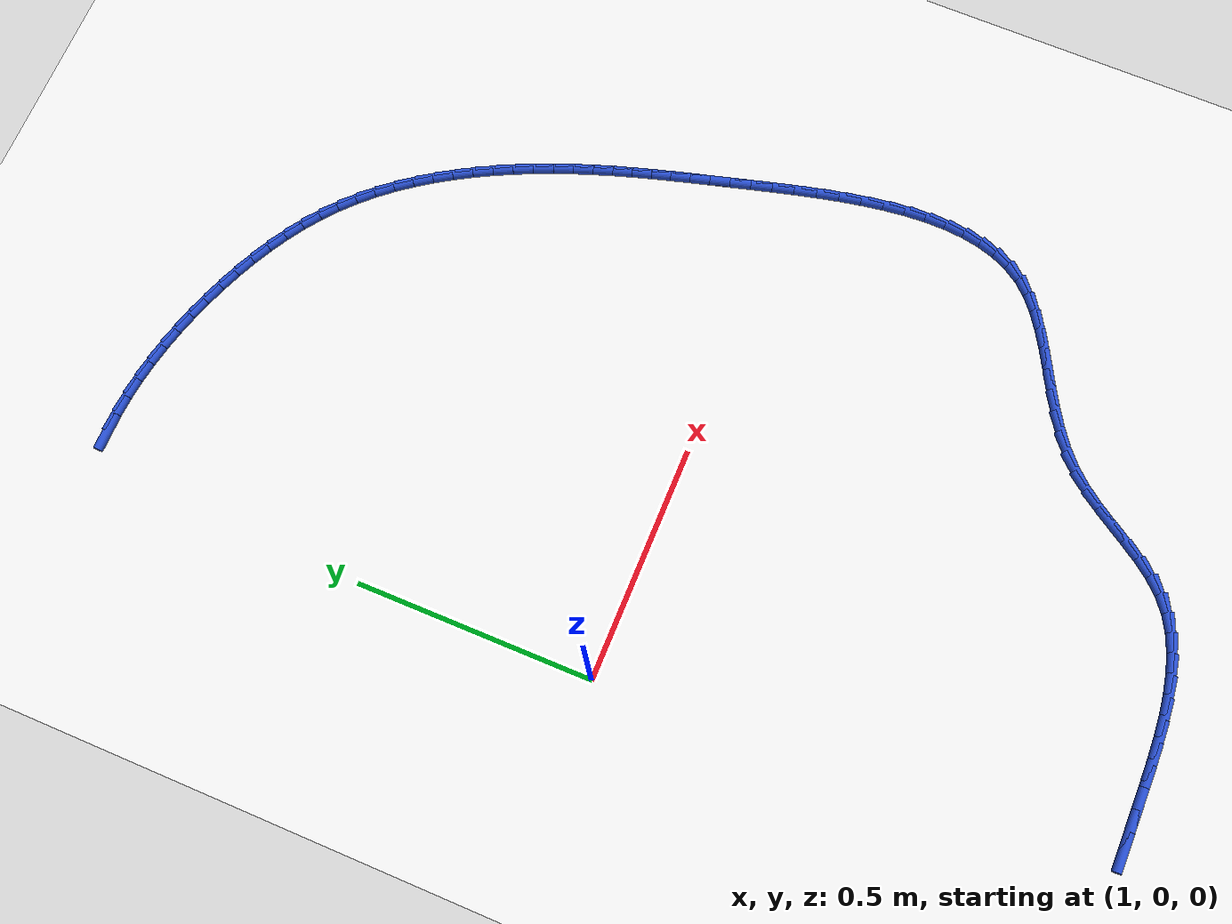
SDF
<sdf version="1.6">
 <world name="default">
  <model name="ground_plane">
   <static>1</static>
   <link name="link">
    <collision name="collision">
     <geometry><plane><normal>0 0 1</normal><size>100 100</size></plane></geometry>
     <surface><friction><ode><mu>100</mu><mu2>50</mu2></ode></friction></surface>
    </collision>
    <visual name="visual">
     <cast_shadows>0</cast_shadows>
     <geometry><plane><normal>0 0 1</normal><size>100 100</size></plane></geometry>
     <material>
      <script><uri>file://media/materials/scripts/gazebo.material</uri><name>Gazebo/WhiteGlow</name></script>
     </material>
    </visual>
   </link>
  </model>
  <model name="line">
   <link name="link_40">
    <pose>1.0859041512149763 1.0980707895062725 0.01 0 1.57 0.0020248489382844845</pose>
    <collision name="collision">
     <geometry><cylinder><radius>0.01</radius><length>0.08</length></cylinder></geometry>
    </collision>
    <visual name="visual">
     <material>
      <script><name>Gazebo/Blue</name><uri>file://media/materials/scripts/gazebo.material</uri></script>
     </material>
     <geometry><cylinder><radius>0.01</radius><length>0.08</length></cylinder></geometry>
    </visual>
   </link>
   <link name="link_41">
    <pose>1.1276568805194542 1.0981553325914177 0.01 0 1.57 -0.053488393881848506</pose>
    <collision name="collision">
     <geometry><cylinder><radius>0.01</radius><length>0.08</length></cylinder></geometry>
    </collision>
    <visual name="visual">
     <material>
      <script><name>Gazebo/Blue</name><uri>file://media/materials/scripts/gazebo.material</uri></script>
     </material>
     <geometry><cylinder><radius>0.01</radius><length>0.08</length></cylinder></geometry>
    </visual>
   </link>
   <link name="link_42">
    <pose>1.1695359308908102 1.09591315074152 0.01 0 1.57 -0.1053639454663621</pose>
    <collision name="collision">
     <geometry><cylinder><radius>0.01</radius><length>0.08</length></cylinder></geometry>
    </collision>
    <visual name="visual">
     <material>
      <script><name>Gazebo/Blue</name><uri>file://media/materials/scripts/gazebo.material</uri></script>
     </material>
     <geometry><cylinder><radius>0.01</radius><length>0.08</length></cylinder></geometry>
    </visual>
   </link>
   <link name="link_43">
    <pose>1.2114445009837551 1.0914810853483048 0.01 0 1.57 -0.15376948117144418</pose>
    <collision name="collision">
     <geometry><cylinder><radius>0.01</radius><length>0.08</length></cylinder></geometry>
    </collision>
    <visual name="visual">
     <material>
      <script><name>Gazebo/Blue</name><uri>file://media/materials/scripts/gazebo.material</uri></script>
     </material>
     <geometry><cylinder><radius>0.01</radius><length>0.08</length></cylinder></geometry>
    </visual>
   </link>
   <link name="link_44">
    <pose>1.2532857894529976 1.084995977803495 0.01 0 1.57 -0.19891472501962215</pose>
    <collision name="collision">
     <geometry><cylinder><radius>0.01</radius><length>0.08</length></cylinder></geometry>
    </collision>
    <visual name="visual">
     <material>
      <script><name>Gazebo/Blue</name><uri>file://media/materials/scripts/gazebo.material</uri></script>
     </material>
     <geometry><cylinder><radius>0.01</radius><length>0.08</length></cylinder></geometry>
    </visual>
   </link>
   <link name="link_45">
    <pose>1.2949629949532466 1.0765946694988149 0.01 0 1.57 -0.24103403496015072</pose>
    <collision name="collision">
     <geometry><cylinder><radius>0.01</radius><length>0.08</length></cylinder></geometry>
    </collision>
    <visual name="visual">
     <material>
      <script><name>Gazebo/Blue</name><uri>file://media/materials/scripts/gazebo.material</uri></script>
     </material>
     <geometry><cylinder><radius>0.01</radius><length>0.08</length></cylinder></geometry>
    </visual>
   </link>
   <link name="link_46">
    <pose>1.336379316139213 1.0664140018259893 0.01 0 1.57 -0.28037332376972135</pose>
    <collision name="collision">
     <geometry><cylinder><radius>0.01</radius><length>0.08</length></cylinder></geometry>
    </collision>
    <visual name="visual">
     <material>
      <script><name>Gazebo/Blue</name><uri>file://media/materials/scripts/gazebo.material</uri></script>
     </material>
     <geometry><cylinder><radius>0.01</radius><length>0.08</length></cylinder></geometry>
    </visual>
   </link>
   <link name="link_47">
    <pose>1.377437951665604 1.0545908161767419 0.01 0 1.57 -0.3171808374756045</pose>
    <collision name="collision">
     <geometry><cylinder><radius>0.01</radius><length>0.08</length></cylinder></geometry>
    </collision>
    <visual name="visual">
     <material>
      <script><name>Gazebo/Blue</name><uri>file://media/materials/scripts/gazebo.material</uri></script>
     </material>
     <geometry><cylinder><radius>0.01</radius><length>0.08</length></cylinder></geometry>
    </visual>
   </link>
   <link name="link_48">
    <pose>1.4180421001871304 1.0412619539427965 0.01 0 1.57 -0.35192389397606794</pose>
    <collision name="collision">
     <geometry><cylinder><radius>0.01</radius><length>0.08</length></cylinder></geometry>
    </collision>
    <visual name="visual">
     <material>
      <script><name>Gazebo/Blue</name><uri>file://media/materials/scripts/gazebo.material</uri></script>
     </material>
     <geometry><cylinder><radius>0.01</radius><length>0.08</length></cylinder></geometry>
    </visual>
   </link>
   <link name="link_49">
    <pose>1.4580929541964442 1.0265548688478368 0.01 0 1.57 -0.3878942419663834</pose>
    <collision name="collision">
     <geometry><cylinder><radius>0.01</radius><length>0.08</length></cylinder></geometry>
    </collision>
    <visual name="visual">
     <material>
      <script><name>Gazebo/Blue</name><uri>file://media/materials/scripts/gazebo.material</uri></script>
     </material>
     <geometry><cylinder><radius>0.01</radius><length>0.08</length></cylinder></geometry>
    </visual>
   </link>
   <link name="link_50">
    <pose>1.4974641320047304 1.0104679835329133 0.01 0 1.57 -0.42752070435544054</pose>
    <collision name="collision">
     <geometry><cylinder><radius>0.01</radius><length>0.08</length></cylinder></geometry>
    </collision>
    <visual name="visual">
     <material>
      <script><name>Gazebo/Blue</name><uri>file://media/materials/scripts/gazebo.material</uri></script>
     </material>
     <geometry><cylinder><radius>0.01</radius><length>0.08</length></cylinder></geometry>
    </visual>
   </link>
   <link name="link_51">
    <pose>1.5360092096523785 0.9929059345043197 0.01 0 1.57 -0.4710433658986751</pose>
    <collision name="collision">
     <geometry><cylinder><radius>0.01</radius><length>0.08</length></cylinder></geometry>
    </collision>
    <visual name="visual">
     <material>
      <script><name>Gazebo/Blue</name><uri>file://media/materials/scripts/gazebo.material</uri></script>
     </material>
     <geometry><cylinder><radius>0.01</radius><length>0.08</length></cylinder></geometry>
    </visual>
   </link>
   <link name="link_52">
    <pose>1.5735813116286221 0.9737712452723644 0.01 0 1.57 -0.5186278829530047</pose>
    <collision name="collision">
     <geometry><cylinder><radius>0.01</radius><length>0.08</length></cylinder></geometry>
    </collision>
    <visual name="visual">
     <material>
      <script><name>Gazebo/Blue</name><uri>file://media/materials/scripts/gazebo.material</uri></script>
     </material>
     <geometry><cylinder><radius>0.01</radius><length>0.08</length></cylinder></geometry>
    </visual>
   </link>
   <link name="link_53">
    <pose>1.610033562422693 0.9529664393473535 0.01 0 1.57 -0.5703944252641756</pose>
    <collision name="collision">
     <geometry><cylinder><radius>0.01</radius><length>0.08</length></cylinder></geometry>
    </collision>
    <visual name="visual">
     <material>
      <script><name>Gazebo/Blue</name><uri>file://media/materials/scripts/gazebo.material</uri></script>
     </material>
     <geometry><cylinder><radius>0.01</radius><length>0.08</length></cylinder></geometry>
    </visual>
   </link>
   <link name="link_54">
    <pose>1.645219086523824 0.9303940402395947 0.01 0 1.57 -0.6263919868194499</pose>
    <collision name="collision">
     <geometry><cylinder><radius>0.01</radius><length>0.08</length></cylinder></geometry>
    </collision>
    <visual name="visual">
     <material>
      <script><name>Gazebo/Blue</name><uri>file://media/materials/scripts/gazebo.material</uri></script>
     </material>
     <geometry><cylinder><radius>0.01</radius><length>0.08</length></cylinder></geometry>
    </visual>
   </link>
   <link name="link_55">
    <pose>1.6789910084212474 0.9059565714593957 0.01 0 1.57 -0.6865693831486038</pose>
    <collision name="collision">
     <geometry><cylinder><radius>0.01</radius><length>0.08</length></cylinder></geometry>
    </collision>
    <visual name="visual">
     <material>
      <script><name>Gazebo/Blue</name><uri>file://media/materials/scripts/gazebo.material</uri></script>
     </material>
     <geometry><cylinder><radius>0.01</radius><length>0.08</length></cylinder></geometry>
    </visual>
   </link>
   <link name="link_56">
    <pose>1.711202453608887 0.8795565579104396 0.01 0 1.57 -0.7492569197214123</pose>
    <collision name="collision">
     <geometry><cylinder><radius>0.01</radius><length>0.08</length></cylinder></geometry>
    </collision>
    <visual name="visual">
     <material>
      <script><name>Gazebo/Blue</name><uri>file://media/materials/scripts/gazebo.material</uri></script>
     </material>
     <geometry><cylinder><radius>0.01</radius><length>0.08</length></cylinder></geometry>
    </visual>
   </link>
   <link name="link_57">
    <pose>1.7417431614210928 0.8511473031676515 0.01 0 1.57 -0.8088338215925488</pose>
    <collision name="collision">
     <geometry><cylinder><radius>0.01</radius><length>0.08</length></cylinder></geometry>
    </collision>
    <visual name="visual">
     <material>
      <script><name>Gazebo/Blue</name><uri>file://media/materials/scripts/gazebo.material</uri></script>
     </material>
     <geometry><cylinder><radius>0.01</radius><length>0.08</length></cylinder></geometry>
    </visual>
   </link>
   <link name="link_58">
    <pose>1.7706362943166303 0.8208671514597528 0.01 0 1.57 -0.8640526660216821</pose>
    <collision name="collision">
     <geometry><cylinder><radius>0.01</radius><length>0.08</length></cylinder></geometry>
    </collision>
    <visual name="visual">
     <material>
      <script><name>Gazebo/Blue</name><uri>file://media/materials/scripts/gazebo.material</uri></script>
     </material>
     <geometry><cylinder><radius>0.01</radius><length>0.08</length></cylinder></geometry>
    </visual>
   </link>
   <link name="link_59">
    <pose>1.7979353977059616 0.7888965842482031 0.01 0 1.57 -0.915018374360747</pose>
    <collision name="collision">
     <geometry><cylinder><radius>0.01</radius><length>0.08</length></cylinder></geometry>
    </collision>
    <visual name="visual">
     <material>
      <script><name>Gazebo/Blue</name><uri>file://media/materials/scripts/gazebo.material</uri></script>
     </material>
     <geometry><cylinder><radius>0.01</radius><length>0.08</length></cylinder></geometry>
    </visual>
   </link>
   <link name="link_60">
    <pose>1.8236940169995473 0.7554160829944615 0.01 0 1.57 -0.9619098745434498</pose>
    <collision name="collision">
     <geometry><cylinder><radius>0.01</radius><length>0.08</length></cylinder></geometry>
    </collision>
    <visual name="visual">
     <material>
      <script><name>Gazebo/Blue</name><uri>file://media/materials/scripts/gazebo.material</uri></script>
     </material>
     <geometry><cylinder><radius>0.01</radius><length>0.08</length></cylinder></geometry>
    </visual>
   </link>
   <link name="link_61">
    <pose>1.8479656976078502 0.7206061291599871 0.01 0 1.57 -1.0049516961673555</pose>
    <collision name="collision">
     <geometry><cylinder><radius>0.01</radius><length>0.08</length></cylinder></geometry>
    </collision>
    <visual name="visual">
     <material>
      <script><name>Gazebo/Blue</name><uri>file://media/materials/scripts/gazebo.material</uri></script>
     </material>
     <geometry><cylinder><radius>0.01</radius><length>0.08</length></cylinder></geometry>
    </visual>
   </link>
   <link name="link_62">
    <pose>1.8708039849413316 0.6846472042062395 0.01 0 1.57 -1.0443914623911994</pose>
    <collision name="collision">
     <geometry><cylinder><radius>0.01</radius><length>0.08</length></cylinder></geometry>
    </collision>
    <visual name="visual">
     <material>
      <script><name>Gazebo/Blue</name><uri>file://media/materials/scripts/gazebo.material</uri></script>
     </material>
     <geometry><cylinder><radius>0.01</radius><length>0.08</length></cylinder></geometry>
    </visual>
   </link>
   <link name="link_63">
    <pose>1.8922624244104518 0.6477197895946778 0.01 0 1.57 -1.0804830885034025</pose>
    <collision name="collision">
     <geometry><cylinder><radius>0.01</radius><length>0.08</length></cylinder></geometry>
    </collision>
    <visual name="visual">
     <material>
      <script><name>Gazebo/Blue</name><uri>file://media/materials/scripts/gazebo.material</uri></script>
     </material>
     <geometry><cylinder><radius>0.01</radius><length>0.08</length></cylinder></geometry>
    </visual>
   </link>
   <link name="link_64">
    <pose>1.9123945614256739 0.6100043667867615 0.01 0 1.57 -1.1134748763608069</pose>
    <collision name="collision">
     <geometry><cylinder><radius>0.01</radius><length>0.08</length></cylinder></geometry>
    </collision>
    <visual name="visual">
     <material>
      <script><name>Gazebo/Blue</name><uri>file://media/materials/scripts/gazebo.material</uri></script>
     </material>
     <geometry><cylinder><radius>0.01</radius><length>0.08</length></cylinder></geometry>
    </visual>
   </link>
   <link name="link_65">
    <pose>1.931253941397458 0.5716814172439498 0.01 0 1.57 -1.1436014759672746</pose>
    <collision name="collision">
     <geometry><cylinder><radius>0.01</radius><length>0.08</length></cylinder></geometry>
    </collision>
    <visual name="visual">
     <material>
      <script><name>Gazebo/Blue</name><uri>file://media/materials/scripts/gazebo.material</uri></script>
     </material>
     <geometry><cylinder><radius>0.01</radius><length>0.08</length></cylinder></geometry>
    </visual>
   </link>
   <link name="link_66">
    <pose>1.948894109736267 0.5329314224277014 0.01 0 1.57 -1.1710787005650325</pose>
    <collision name="collision">
     <geometry><cylinder><radius>0.01</radius><length>0.08</length></cylinder></geometry>
    </collision>
    <visual name="visual">
     <material>
      <script><name>Gazebo/Blue</name><uri>file://media/materials/scripts/gazebo.material</uri></script>
     </material>
     <geometry><cylinder><radius>0.01</radius><length>0.08</length></cylinder></geometry>
    </visual>
   </link>
   <link name="link_67">
    <pose>1.9653686118525615 0.4939348637994765 0.01 0 1.57 -1.196100303893416</pose>
    <collision name="collision">
     <geometry><cylinder><radius>0.01</radius><length>0.08</length></cylinder></geometry>
    </collision>
    <visual name="visual">
     <material>
      <script><name>Gazebo/Blue</name><uri>file://media/materials/scripts/gazebo.material</uri></script>
     </material>
     <geometry><cylinder><radius>0.01</radius><length>0.08</length></cylinder></geometry>
    </visual>
   </link>
   <link name="link_68">
    <pose>1.9807309931568036 0.4548722228207336 0.01 0 1.57 -1.2188362346635866</pose>
    <collision name="collision">
     <geometry><cylinder><radius>0.01</radius><length>0.08</length></cylinder></geometry>
    </collision>
    <visual name="visual">
     <material>
      <script><name>Gazebo/Blue</name><uri>file://media/materials/scripts/gazebo.material</uri></script>
     </material>
     <geometry><cylinder><radius>0.01</radius><length>0.08</length></cylinder></geometry>
    </visual>
   </link>
   <link name="link_69">
    <pose>1.995035281477548 0.41592263651237743 0.01 0 1.57 -1.2393833951507676</pose>
    <collision name="collision">
     <geometry><cylinder><radius>0.01</radius><length>0.08</length></cylinder></geometry>
    </collision>
    <visual name="visual">
     <material>
      <script><name>Gazebo/Blue</name><uri>file://media/materials/scripts/gazebo.material</uri></script>
     </material>
     <geometry><cylinder><radius>0.01</radius><length>0.08</length></cylinder></geometry>
    </visual>
   </link>
   <link name="link_70">
    <pose>2.008383133429788 0.377132506260083 0.01 0 1.57 -1.257463731391676</pose>
    <collision name="collision">
     <geometry><cylinder><radius>0.01</radius><length>0.08</length></cylinder></geometry>
    </collision>
    <visual name="visual">
     <material>
      <script><name>Gazebo/Blue</name><uri>file://media/materials/scripts/gazebo.material</uri></script>
     </material>
     <geometry><cylinder><radius>0.01</radius><length>0.08</length></cylinder></geometry>
    </visual>
   </link>
   <link name="link_71">
    <pose>2.0209634281023785 0.33830515502280295 0.01 0 1.57 -1.2726690647923231</pose>
    <collision name="collision">
     <geometry><cylinder><radius>0.01</radius><length>0.08</length></cylinder></geometry>
    </collision>
    <visual name="visual">
     <material>
      <script><name>Gazebo/Blue</name><uri>file://media/materials/scripts/gazebo.material</uri></script>
     </material>
     <geometry><cylinder><radius>0.01</radius><length>0.08</length></cylinder></geometry>
    </visual>
   </link>
   <link name="link_72">
    <pose>2.0329743663474846 0.29921792713884837 0.01 0 1.57 -1.2847072533969426</pose>
    <collision name="collision">
     <geometry><cylinder><radius>0.01</radius><length>0.08</length></cylinder></geometry>
    </collision>
    <visual name="visual">
     <material>
      <script><name>Gazebo/Blue</name><uri>file://media/materials/scripts/gazebo.material</uri></script>
     </material>
     <geometry><cylinder><radius>0.01</radius><length>0.08</length></cylinder></geometry>
    </visual>
   </link>
   <link name="link_73">
    <pose>2.0446141490172707 0.25964816694652904 0.01 0 1.57 -1.293422017777791</pose>
    <collision name="collision">
     <geometry><cylinder><radius>0.01</radius><length>0.08</length></cylinder></geometry>
    </collision>
    <visual name="visual">
     <material>
      <script><name>Gazebo/Blue</name><uri>file://media/materials/scripts/gazebo.material</uri></script>
     </material>
     <geometry><cylinder><radius>0.01</radius><length>0.08</length></cylinder></geometry>
    </visual>
   </link>
   <link name="link_74">
    <pose>2.0560809769639032 0.21937321878415655 0.01 0 1.57 -1.2987940855581936</pose>
    <collision name="collision">
     <geometry><cylinder><radius>0.01</radius><length>0.08</length></cylinder></geometry>
    </collision>
    <visual name="visual">
     <material>
      <script><name>Gazebo/Blue</name><uri>file://media/materials/scripts/gazebo.material</uri></script>
     </material>
     <geometry><cylinder><radius>0.01</radius><length>0.08</length></cylinder></geometry>
    </visual>
   </link>
   <link name="link_75">
    <pose>2.0675730510395476 0.17817042699004093 0.01 0 1.57 -1.3009300420021246</pose>
    <collision name="collision">
     <geometry><cylinder><radius>0.01</radius><length>0.08</length></cylinder></geometry>
    </collision>
    <visual name="visual">
     <material>
      <script><name>Gazebo/Blue</name><uri>file://media/materials/scripts/gazebo.material</uri></script>
     </material>
     <geometry><cylinder><radius>0.01</radius><length>0.08</length></cylinder></geometry>
    </visual>
   </link>
   <link name="link_76">
    <pose>2.0792885720963685 0.1358171359024924 0.01 0 1.57 -1.3008429352503927</pose>
    <collision name="collision">
     <geometry><cylinder><radius>0.01</radius><length>0.08</length></cylinder></geometry>
    </collision>
    <visual name="visual">
     <material>
      <script><name>Gazebo/Blue</name><uri>file://media/materials/scripts/gazebo.material</uri></script>
     </material>
     <geometry><cylinder><radius>0.01</radius><length>0.08</length></cylinder></geometry>
    </visual>
   </link>
   <link name="link_77">
    <pose>2.0913747337799835 0.09213873298599287 0.01 0 1.57 -1.3043114695737508</pose>
    <collision name="collision">
     <geometry><cylinder><radius>0.01</radius><length>0.08</length></cylinder></geometry>
    </collision>
    <visual name="visual">
     <material>
      <script><name>Gazebo/Blue</name><uri>file://media/materials/scripts/gazebo.material</uri></script>
     </material>
     <geometry><cylinder><radius>0.01</radius><length>0.08</length></cylinder></geometry>
    </visual>
   </link>
   <link name="link_78">
    <pose>2.1036134141957223 0.04730469238965821 0.01 0 1.57 -1.3135682985857677</pose>
    <collision name="collision">
     <geometry><cylinder><radius>0.01</radius><length>0.08</length></cylinder></geometry>
    </collision>
    <visual name="visual">
     <material>
      <script><name>Gazebo/Blue</name><uri>file://media/materials/scripts/gazebo.material</uri></script>
     </material>
     <geometry><cylinder><radius>0.01</radius><length>0.08</length></cylinder></geometry>
    </visual>
   </link>
   <link name="link_79">
    <pose>2.115627209631628 0.001634514052342251 0.01 0 1.57 -1.3285848960788613</pose>
    <collision name="collision">
     <geometry><cylinder><radius>0.01</radius><length>0.08</length></cylinder></geometry>
    </collision>
    <visual name="visual">
     <material>
      <script><name>Gazebo/Blue</name><uri>file://media/materials/scripts/gazebo.material</uri></script>
     </material>
     <geometry><cylinder><radius>0.01</radius><length>0.08</length></cylinder></geometry>
    </visual>
   </link>
   <link name="link_80">
    <pose>2.1270380557012545 -0.044551679805078674 0.01 0 1.57 -1.349607832415949</pose>
    <collision name="collision">
     <geometry><cylinder><radius>0.01</radius><length>0.08</length></cylinder></geometry>
    </collision>
    <visual name="visual">
     <material>
      <script><name>Gazebo/Blue</name><uri>file://media/materials/scripts/gazebo.material</uri></script>
     </material>
     <geometry><cylinder><radius>0.01</radius><length>0.08</length></cylinder></geometry>
    </visual>
   </link>
   <link name="link_81">
    <pose>2.137467888018156 -0.09093376696172766 0.01 0 1.57 -1.3771621370236684</pose>
    <collision name="collision">
     <geometry><cylinder><radius>0.01</radius><length>0.08</length></cylinder></geometry>
    </collision>
    <visual name="visual">
     <material>
      <script><name>Gazebo/Blue</name><uri>file://media/materials/scripts/gazebo.material</uri></script>
     </material>
     <geometry><cylinder><radius>0.01</radius><length>0.08</length></cylinder></geometry>
    </visual>
   </link>
   <link name="link_82">
    <pose>2.146538642195887 -0.13719162519672876 0.01 0 1.57 -1.4120676288547382</pose>
    <collision name="collision">
     <geometry><cylinder><radius>0.01</radius><length>0.08</length></cylinder></geometry>
    </collision>
    <visual name="visual">
     <material>
      <script><name>Gazebo/Blue</name><uri>file://media/materials/scripts/gazebo.material</uri></script>
     </material>
     <geometry><cylinder><radius>0.01</radius><length>0.08</length></cylinder></geometry>
    </visual>
   </link>
   <link name="link_83">
    <pose>2.153872253848003 -0.1830051322892035 0.01 0 1.57 -1.4554719932239724</pose>
    <collision name="collision">
     <geometry><cylinder><radius>0.01</radius><length>0.08</length></cylinder></geometry>
    </collision>
    <visual name="visual">
     <material>
      <script><name>Gazebo/Blue</name><uri>file://media/materials/scripts/gazebo.material</uri></script>
     </material>
     <geometry><cylinder><radius>0.01</radius><length>0.08</length></cylinder></geometry>
    </visual>
   </link>
   <link name="link_84">
    <pose>2.159090658588057 -0.228054166018276 0.01 0 1.57 -1.5088905804484338</pose>
    <collision name="collision">
     <geometry><cylinder><radius>0.01</radius><length>0.08</length></cylinder></geometry>
    </collision>
    <visual name="visual">
     <material>
      <script><name>Gazebo/Blue</name><uri>file://media/materials/scripts/gazebo.material</uri></script>
     </material>
     <geometry><cylinder><radius>0.01</radius><length>0.08</length></cylinder></geometry>
    </visual>
   </link>
   <link name="link_85">
    <pose>2.1618157920296053 -0.2720186041630693 0.01 0 1.57 1.567361114647337</pose>
    <collision name="collision">
     <geometry><cylinder><radius>0.01</radius><length>0.08</length></cylinder></geometry>
    </collision>
    <visual name="visual">
     <material>
      <script><name>Gazebo/Blue</name><uri>file://media/materials/scripts/gazebo.material</uri></script>
     </material>
     <geometry><cylinder><radius>0.01</radius><length>0.08</length></cylinder></geometry>
    </visual>
   </link>
   <link name="link_86">
    <pose>2.161669589786202 -0.3145783245027068 0.01 0 1.57 1.4878327398568907</pose>
    <collision name="collision">
     <geometry><cylinder><radius>0.01</radius><length>0.08</length></cylinder></geometry>
    </collision>
    <visual name="visual">
     <material>
      <script><name>Gazebo/Blue</name><uri>file://media/materials/scripts/gazebo.material</uri></script>
     </material>
     <geometry><cylinder><radius>0.01</radius><length>0.08</length></cylinder></geometry>
    </visual>
   </link>
   <link name="link_87">
    <pose>2.1582739874714014 -0.35541320481631206 0.01 0 1.57 1.3916827305792552</pose>
    <collision name="collision">
     <geometry><cylinder><radius>0.01</radius><length>0.08</length></cylinder></geometry>
    </collision>
    <visual name="visual">
     <material>
      <script><name>Gazebo/Blue</name><uri>file://media/materials/scripts/gazebo.material</uri></script>
     </material>
     <geometry><cylinder><radius>0.01</radius><length>0.08</length></cylinder></geometry>
    </visual>
   </link>
   <link name="link_88">
    <pose>2.151250920698758 -0.39420312288300713 0.01 0 1.57 1.2767939337145386</pose>
    <collision name="collision">
     <geometry><cylinder><radius>0.01</radius><length>0.08</length></cylinder></geometry>
    </collision>
    <visual name="visual">
     <material>
      <script><name>Gazebo/Blue</name><uri>file://media/materials/scripts/gazebo.material</uri></script>
     </material>
     <geometry><cylinder><radius>0.01</radius><length>0.08</length></cylinder></geometry>
    </visual>
   </link>
   <link name="link_89">
    <pose>2.140222325081826 -0.4306279564819158 0.01 0 1.57 1.1423037116308066</pose>
    <collision name="collision">
     <geometry><cylinder><radius>0.01</radius><length>0.08</length></cylinder></geometry>
    </collision>
    <visual name="visual">
     <material>
      <script><name>Gazebo/Blue</name><uri>file://media/materials/scripts/gazebo.material</uri></script>
     </material>
     <geometry><cylinder><radius>0.01</radius><length>0.08</length></cylinder></geometry>
    </visual>
   </link>
   <link name="link_90">
    <pose>2.124810136234161 -0.46436758339216133 0.01 0 1.57 0.989938470877759</pose>
    <collision name="collision">
     <geometry><cylinder><radius>0.01</radius><length>0.08</length></cylinder></geometry>
    </collision>
    <visual name="visual">
     <material>
      <script><name>Gazebo/Blue</name><uri>file://media/materials/scripts/gazebo.material</uri></script>
     </material>
     <geometry><cylinder><radius>0.01</radius><length>0.08</length></cylinder></geometry>
    </visual>
   </link>
   <link name="link_91">
    <pose>2.104636289769317 -0.4951018813928668 0.01 0 1.57 0.8282781801103734</pose>
    <collision name="collision">
     <geometry><cylinder><radius>0.01</radius><length>0.08</length></cylinder></geometry>
    </collision>
    <visual name="visual">
     <material>
      <script><name>Gazebo/Blue</name><uri>file://media/materials/scripts/gazebo.material</uri></script>
     </material>
     <geometry><cylinder><radius>0.01</radius><length>0.08</length></cylinder></geometry>
    </visual>
   </link>
   <link name="link_92">
    <pose>2.079414730130456 -0.5225847959158233 0.01 0 1.57 0.6914592603283162</pose>
    <collision name="collision">
     <geometry><cylinder><radius>0.01</radius><length>0.08</length></cylinder></geometry>
    </collision>
    <visual name="visual">
     <material>
      <script><name>Gazebo/Blue</name><uri>file://media/materials/scripts/gazebo.material</uri></script>
     </material>
     <geometry><cylinder><radius>0.01</radius><length>0.08</length></cylinder></geometry>
    </visual>
   </link>
   <link name="link_93">
    <pose>2.0496604746463722 -0.547215140809333 0.01 0 1.57 0.5935673480060498</pose>
    <collision name="collision">
     <geometry><cylinder><radius>0.01</radius><length>0.08</length></cylinder></geometry>
    </collision>
    <visual name="visual">
     <material>
      <script><name>Gazebo/Blue</name><uri>file://media/materials/scripts/gazebo.material</uri></script>
     </material>
     <geometry><cylinder><radius>0.01</radius><length>0.08</length></cylinder></geometry>
    </visual>
   </link>
   <link name="link_94">
    <pose>2.016301116201234 -0.5697238556868558 0.01 0 1.57 0.5301685091926357</pose>
    <collision name="collision">
     <geometry><cylinder><radius>0.01</radius><length>0.08</length></cylinder></geometry>
    </collision>
    <visual name="visual">
     <material>
      <script><name>Gazebo/Blue</name><uri>file://media/materials/scripts/gazebo.material</uri></script>
     </material>
     <geometry><cylinder><radius>0.01</radius><length>0.08</length></cylinder></geometry>
    </visual>
   </link>
   <link name="link_95">
    <pose>1.9802676606260095 -0.5908446276042343 0.01 0 1.57 0.4965091137603325</pose>
    <collision name="collision">
     <geometry><cylinder><radius>0.01</radius><length>0.08</length></cylinder></geometry>
    </collision>
    <visual name="visual">
     <material>
      <script><name>Gazebo/Blue</name><uri>file://media/materials/scripts/gazebo.material</uri></script>
     </material>
     <geometry><cylinder><radius>0.01</radius><length>0.08</length></cylinder></geometry>
    </visual>
   </link>
   <link name="link_96">
    <pose>1.942491113751666 -0.611311143617312 0.01 0 1.57 0.48925784665117655</pose>
    <collision name="collision">
     <geometry><cylinder><radius>0.01</radius><length>0.08</length></cylinder></geometry>
    </collision>
    <visual name="visual">
     <material>
      <script><name>Gazebo/Blue</name><uri>file://media/materials/scripts/gazebo.material</uri></script>
     </material>
     <geometry><cylinder><radius>0.01</radius><length>0.08</length></cylinder></geometry>
    </visual>
   </link>
   <link name="link_97">
    <pose>1.903902481409174 -0.6318570907819313 0.01 0 1.57 0.5068403020135478</pose>
    <collision name="collision">
     <geometry><cylinder><radius>0.01</radius><length>0.08</length></cylinder></geometry>
    </collision>
    <visual name="visual">
     <material>
      <script><name>Gazebo/Blue</name><uri>file://media/materials/scripts/gazebo.material</uri></script>
     </material>
     <geometry><cylinder><radius>0.01</radius><length>0.08</length></cylinder></geometry>
    </visual>
   </link>
   <link name="link_98">
    <pose>1.8654327694294996 -0.653216156153935 0.01 0 1.57 0.5492927976516822</pose>
    <collision name="collision">
     <geometry><cylinder><radius>0.01</radius><length>0.08</length></cylinder></geometry>
    </collision>
    <visual name="visual">
     <material>
      <script><name>Gazebo/Blue</name><uri>file://media/materials/scripts/gazebo.material</uri></script>
     </material>
     <geometry><cylinder><radius>0.01</radius><length>0.08</length></cylinder></geometry>
    </visual>
   </link>
   <link name="link_99">
    <pose>1.828012983643612 -0.6761220267891664 0.01 0 1.57 0.6178705623774416</pose>
    <collision name="collision">
     <geometry><cylinder><radius>0.01</radius><length>0.08</length></cylinder></geometry>
    </collision>
    <visual name="visual">
     <material>
      <script><name>Gazebo/Blue</name><uri>file://media/materials/scripts/gazebo.material</uri></script>
     </material>
     <geometry><cylinder><radius>0.01</radius><length>0.08</length></cylinder></geometry>
    </visual>
   </link>
   <link name="link_100">
    <pose>1.7925741298824787 -0.7013083897434682 0.01 0 1.57 0.7142758667436204</pose>
    <collision name="collision">
     <geometry><cylinder><radius>0.01</radius><length>0.08</length></cylinder></geometry>
    </collision>
    <visual name="visual">
     <material>
      <script><name>Gazebo/Blue</name><uri>file://media/materials/scripts/gazebo.material</uri></script>
     </material>
     <geometry><cylinder><radius>0.01</radius><length>0.08</length></cylinder></geometry>
    </visual>
   </link>
   <link name="link_101">
    <pose>1.7600472139770678 -0.7295089320726841 0.01 0 1.57 0.8320992725831474</pose>
    <collision name="collision">
     <geometry><cylinder><radius>0.01</radius><length>0.08</length></cylinder></geometry>
    </collision>
    <visual name="visual">
     <material>
      <script><name>Gazebo/Blue</name><uri>file://media/materials/scripts/gazebo.material</uri></script>
     </material>
     <geometry><cylinder><radius>0.01</radius><length>0.08</length></cylinder></geometry>
    </visual>
   </link>
   <link name="link_102">
    <pose>1.7311480260321528 -0.761241762898271 0.01 0 1.57 0.926734536011109</pose>
    <collision name="collision">
     <geometry><cylinder><radius>0.01</radius><length>0.08</length></cylinder></geometry>
    </collision>
    <visual name="visual">
     <material>
      <script><name>Gazebo/Blue</name><uri>file://media/materials/scripts/gazebo.material</uri></script>
     </material>
     <geometry><cylinder><radius>0.01</radius><length>0.08</length></cylinder></geometry>
    </visual>
   </link>
   <link name="link_103">
    <pose>1.7052721917312026 -0.7957026050829156 0.01 0 1.57 0.9821212700706273</pose>
    <collision name="collision">
     <geometry><cylinder><radius>0.01</radius><length>0.08</length></cylinder></geometry>
    </collision>
    <visual name="visual">
     <material>
      <script><name>Gazebo/Blue</name><uri>file://media/materials/scripts/gazebo.material</uri></script>
     </material>
     <geometry><cylinder><radius>0.01</radius><length>0.08</length></cylinder></geometry>
    </visual>
   </link>
   <link name="link_104">
    <pose>1.681315033996733 -0.831586036718521 0.01 0 1.57 0.9994298119682404</pose>
    <collision name="collision">
     <geometry><cylinder><radius>0.01</radius><length>0.08</length></cylinder></geometry>
    </collision>
    <visual name="visual">
     <material>
      <script><name>Gazebo/Blue</name><uri>file://media/materials/scripts/gazebo.material</uri></script>
     </material>
     <geometry><cylinder><radius>0.01</radius><length>0.08</length></cylinder></geometry>
    </visual>
   </link>
   <link name="link_105">
    <pose>1.6581709260043802 -0.8675856845516846 0.01 0 1.57 0.9782262384624796</pose>
    <collision name="collision">
     <geometry><cylinder><radius>0.01</radius><length>0.08</length></cylinder></geometry>
    </collision>
    <visual name="visual">
     <material>
      <script><name>Gazebo/Blue</name><uri>file://media/materials/scripts/gazebo.material</uri></script>
     </material>
     <geometry><cylinder><radius>0.01</radius><length>0.08</length></cylinder></geometry>
    </visual>
   </link>
   <link name="link_106">
    <pose>1.6347342409297783 -0.9023951753290044 0.01 0 1.57 0.915513687886096</pose>
    <collision name="collision">
     <geometry><cylinder><radius>0.01</radius><length>0.08</length></cylinder></geometry>
    </collision>
    <visual name="visual">
     <material>
      <script><name>Gazebo/Blue</name><uri>file://media/materials/scripts/gazebo.material</uri></script>
     </material>
     <geometry><cylinder><radius>0.01</radius><length>0.08</length></cylinder></geometry>
    </visual>
   </link>
   <link name="link_107">
    <pose>1.6098993519485632 -0.934708135797076 0.01 0 1.57 0.8063684613929476</pose>
    <collision name="collision">
     <geometry><cylinder><radius>0.01</radius><length>0.08</length></cylinder></geometry>
    </collision>
    <visual name="visual">
     <material>
      <script><name>Gazebo/Blue</name><uri>file://media/materials/scripts/gazebo.material</uri></script>
     </material>
     <geometry><cylinder><radius>0.01</radius><length>0.08</length></cylinder></geometry>
    </visual>
   </link>
   <link name="link_108">
    <pose>1.5825606322363686 -0.963218192702497 0.01 0 1.57 0.6541394225039748</pose>
    <collision name="collision">
     <geometry><cylinder><radius>0.01</radius><length>0.08</length></cylinder></geometry>
    </collision>
    <visual name="visual">
     <material>
      <script><name>Gazebo/Blue</name><uri>file://media/materials/scripts/gazebo.material</uri></script>
     </material>
     <geometry><cylinder><radius>0.01</radius><length>0.08</length></cylinder></geometry>
    </visual>
   </link>
   <link name="link_109">
    <pose>1.5517798242674132 -0.9868195832762553 0.01 0 1.57 0.5028497621472886</pose>
    <collision name="collision">
     <geometry><cylinder><radius>0.01</radius><length>0.08</length></cylinder></geometry>
    </collision>
    <visual name="visual">
     <material>
      <script><name>Gazebo/Blue</name><uri>file://media/materials/scripts/gazebo.material</uri></script>
     </material>
     <geometry><cylinder><radius>0.01</radius><length>0.08</length></cylinder></geometry>
    </visual>
   </link>
   <link name="link_110">
    <pose>1.5176205890419878 -1.0056074541307902 0.01 0 1.57 0.37289176178670014</pose>
    <collision name="collision">
     <geometry><cylinder><radius>0.01</radius><length>0.08</length></cylinder></geometry>
    </collision>
    <visual name="visual">
     <material>
      <script><name>Gazebo/Blue</name><uri>file://media/materials/scripts/gazebo.material</uri></script>
     </material>
     <geometry><cylinder><radius>0.01</radius><length>0.08</length></cylinder></geometry>
    </visual>
   </link>
   <link name="link_111">
    <pose>1.480517762670644 -1.0201218460096262 0.01 0 1.57 0.265751122437241</pose>
    <collision name="collision">
     <geometry><cylinder><radius>0.01</radius><length>0.08</length></cylinder></geometry>
    </collision>
    <visual name="visual">
     <material>
      <script><name>Gazebo/Blue</name><uri>file://media/materials/scripts/gazebo.material</uri></script>
     </material>
     <geometry><cylinder><radius>0.01</radius><length>0.08</length></cylinder></geometry>
    </visual>
   </link>
   <link name="link_112">
    <pose>1.4409067859974203 -1.0309035244957776 0.01 0 1.57 0.18010611785109923</pose>
    <collision name="collision">
     <geometry><cylinder><radius>0.01</radius><length>0.08</length></cylinder></geometry>
    </collision>
    <visual name="visual">
     <material>
      <script><name>Gazebo/Blue</name><uri>file://media/materials/scripts/gazebo.material</uri></script>
     </material>
     <geometry><cylinder><radius>0.01</radius><length>0.08</length></cylinder></geometry>
    </visual>
   </link>
   <link name="link_113">
    <pose>1.3992230998663504 -1.0384932551722572 0.01 0 1.57 0.11350904703301316</pose>
    <collision name="collision">
     <geometry><cylinder><radius>0.01</radius><length>0.08</length></cylinder></geometry>
    </collision>
    <visual name="visual">
     <material>
      <script><name>Gazebo/Blue</name><uri>file://media/materials/scripts/gazebo.material</uri></script>
     </material>
     <geometry><cylinder><radius>0.01</radius><length>0.08</length></cylinder></geometry>
    </visual>
   </link>
   <link name="link_114">
    <pose>1.3559021451214706 -1.0434318036220802 0.01 0 1.57 0.06343577532886256</pose>
    <collision name="collision">
     <geometry><cylinder><radius>0.01</radius><length>0.08</length></cylinder></geometry>
    </collision>
    <visual name="visual">
     <material>
      <script><name>Gazebo/Blue</name><uri>file://media/materials/scripts/gazebo.material</uri></script>
     </material>
     <geometry><cylinder><radius>0.01</radius><length>0.08</length></cylinder></geometry>
    </visual>
   </link>
   <link name="link_115">
    <pose>1.3113793626068164 -1.0462599354282593 0.01 0 1.57 0.027780526714225328</pose>
    <collision name="collision">
     <geometry><cylinder><radius>0.01</radius><length>0.08</length></cylinder></geometry>
    </collision>
    <visual name="visual">
     <material>
      <script><name>Gazebo/Blue</name><uri>file://media/materials/scripts/gazebo.material</uri></script>
     </material>
     <geometry><cylinder><radius>0.01</radius><length>0.08</length></cylinder></geometry>
    </visual>
   </link>
   <link name="link_116">
    <pose>1.266090193166423 -1.0475184161738085 0.01 0 1.57 0.005032721352954601</pose>
    <collision name="collision">
     <geometry><cylinder><radius>0.01</radius><length>0.08</length></cylinder></geometry>
    </collision>
    <visual name="visual">
     <material>
      <script><name>Gazebo/Blue</name><uri>file://media/materials/scripts/gazebo.material</uri></script>
     </material>
     <geometry><cylinder><radius>0.01</radius><length>0.08</length></cylinder></geometry>
    </visual>
   </link>
   <link name="link_117">
    <pose>1.2204700776443274 -1.0477480114417421 0.01 0 1.57 -0.005679848858184007</pose>
    <collision name="collision">
     <geometry><cylinder><radius>0.01</radius><length>0.08</length></cylinder></geometry>
    </collision>
    <visual name="visual">
     <material>
      <script><name>Gazebo/Blue</name><uri>file://media/materials/scripts/gazebo.material</uri></script>
     </material>
     <geometry><cylinder><radius>0.01</radius><length>0.08</length></cylinder></geometry>
    </visual>
   </link>
   <link name="link_118">
    <pose>1.174954456884565 -1.047489486815074 0.01 0 1.57 -0.005068141724780794</pose>
    <collision name="collision">
     <geometry><cylinder><radius>0.01</radius><length>0.08</length></cylinder></geometry>
    </collision>
    <visual name="visual">
     <material>
      <script><name>Gazebo/Blue</name><uri>file://media/materials/scripts/gazebo.material</uri></script>
     </material>
     <geometry><cylinder><radius>0.01</radius><length>0.08</length></cylinder></geometry>
    </visual>
   </link>
   <link name="link_119">
    <pose>1.1299664686922568 -1.0472614793627948 0.01 0 1.57 -0.0021708670303053333</pose>
    <collision name="collision">
     <geometry><cylinder><radius>0.01</radius><length>0.08</length></cylinder></geometry>
    </collision>
    <visual name="visual">
     <material>
      <script><name>Gazebo/Blue</name><uri>file://media/materials/scripts/gazebo.material</uri></script>
     </material>
     <geometry><cylinder><radius>0.01</radius><length>0.08</length></cylinder></geometry>
    </visual>
   </link>
   <link name="link_120">
    <pose>1.085697267978803 -1.0471653766635414 0.01 0 1.57 -0.005387070440767215</pose>
    <collision name="collision">
     <geometry><cylinder><radius>0.01</radius><length>0.08</length></cylinder></geometry>
    </collision>
    <visual name="visual">
     <material>
      <script><name>Gazebo/Blue</name><uri>file://media/materials/scripts/gazebo.material</uri></script>
     </material>
     <geometry><cylinder><radius>0.01</radius><length>0.08</length></cylinder></geometry>
    </visual>
   </link>
  </model>
 </world>
</sdf>
